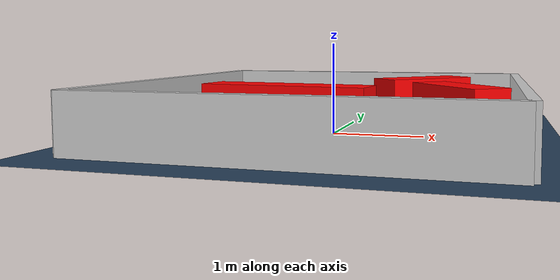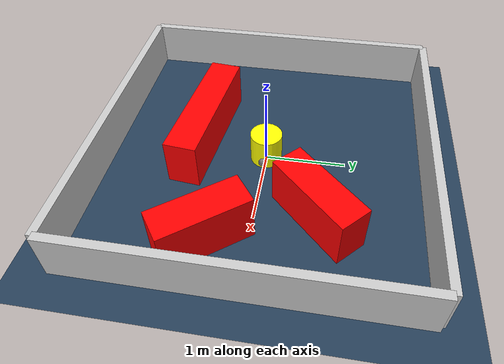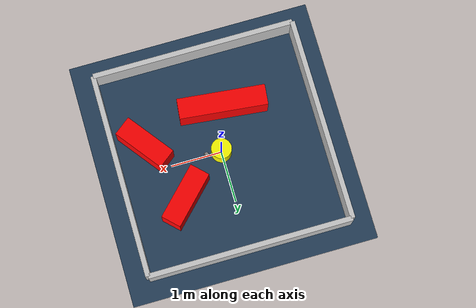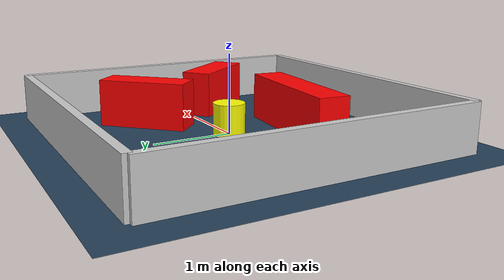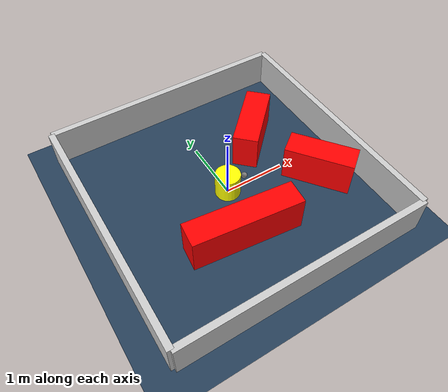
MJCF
<?xml version="1.0" ?>
<mujoco model="generated_environment">
  <option timestep="0.01" integrator="RK4" cone="elliptic"/>
  <default>
    <geom density="1"/>
  </default>
  <asset>
    <texture builtin="gradient" height="3072" rgb1="0.3 0.5 0.7" rgb2="0 0 0" type="skybox" width="512"/>
    <texture builtin="checker" height="300" mark="edge" markrgb="0.8 0.8 0.8" name="groundplane" rgb1="0.2 0.3 0.4" rgb2="0.1 0.2 0.3" type="2d" width="300"/>
    <material name="groundplane" reflectance="0.2" texrepeat="5 5" texture="groundplane" texuniform="true"/>
    <material name="robot" rgba="0.0 1.0 0.0 1"/>
  </asset>
  <worldbody>
    <light dir="0 0 -1" directional="true" pos="0 0 1.5"/>
    <geom condim="4" friction="1.0 0.005 0.001" material="groundplane" name="floor" size="0 0 0.05" type="plane"/>
    <body name="walls">
      <geom name="wall_1" condim="4" pos="-2.0 0.0 0.3" rgba="0.800000011920929 0.800000011920929 0.800000011920929 1.0" size="0.05 2.0 0.3" type="box"/>
      <geom name="wall_2" condim="4" pos="2.0 0.0 0.3" rgba="0.800000011920929 0.800000011920929 0.800000011920929 1.0" size="0.05 2.0 0.3" type="box"/>
      <geom name="wall_3" condim="4" pos="0.0 -2.0 0.3" rgba="0.800000011920929 0.800000011920929 0.800000011920929 1.0" size="2.0 0.05 0.3" type="box"/>
      <geom name="wall_4" condim="4" pos="0.0 2.0 0.3" rgba="0.800000011920929 0.800000011920929 0.800000011920929 1.0" size="2.0 0.05 0.3" type="box"/>
    </body>
    <body name="robot">
      <joint name="joint_x" type="slide" pos="0 0 0" axis="1 0 0"/>
      <joint name="joint_y" type="slide" pos="0 0 0" axis="0 1 0"/>
      <geom name="robot" type="sphere" pos="0.3 0.0 0.2" size="0.05" mass="5." friction="1.0 0.005 0.0001" condim="4" rgba="0.5 0.5 0.5 1.0"/>
      <site name="sensor_ball"/>
    </body>
    <body name="obstacle_movable_1">
      <geom name="obstacle_movable_1" condim="4" pos="0.0 0.0 0.2" euler="0 0 0.0" friction="1.0 0.005 0.001" rgba="1.0 1.0 0.0 1.0" size="0.2 0.2 0.0" type="cylinder" mass="0.1"/>
      <joint type="free"/>
    </body>
    <body name="obstacle_2_static">
      <geom name="obstacle_2_static" condim="4" pos="1.3899500016371316 -0.48332090845028386 0.3" euler="0 0 307.4187624931467" friction="1.0 0.005 0.001" rgba="1 0 0 1" size="0.5385578058099703 0.2 0.3" type="box"/>
    </body>
    <body name="obstacle_3_static">
      <geom name="obstacle_3_static" condim="4" pos="-0.2575133035993209 -0.8389951740673446 0.3" euler="0 0 353.9565724149967" friction="1.0 0.005 0.001" rgba="1 0 0 1" size="0.8607174734540721 0.2 0.3" type="box"/>
    </body>
    <body name="obstacle_4_static">
      <geom name="obstacle_4_static" condim="4" pos="0.9136872213333067 0.7196277547092758 0.3" euler="0 0 45.45480237181793" friction="1.0 0.005 0.001" rgba="1 0 0 1" size="0.5707627184388754 0.2 0.3" type="box"/>
    </body>
  </worldbody>
  <actuator>
    <motor name="actuator_x" joint="joint_x" gear="1" ctrlrange="-1 1"/>
    <motor name="actuator_y" joint="joint_y" gear="1" ctrlrange="-1 1"/>
  </actuator>
</mujoco>
